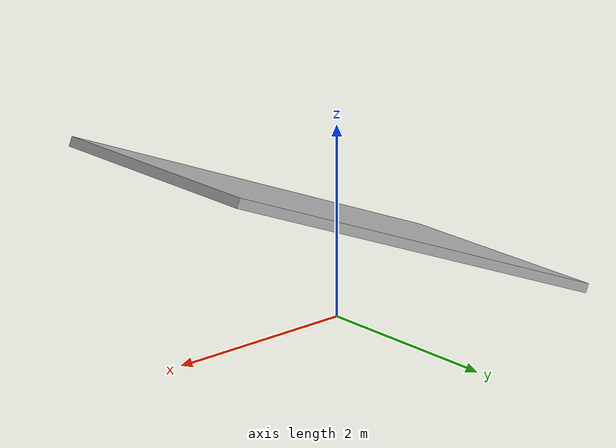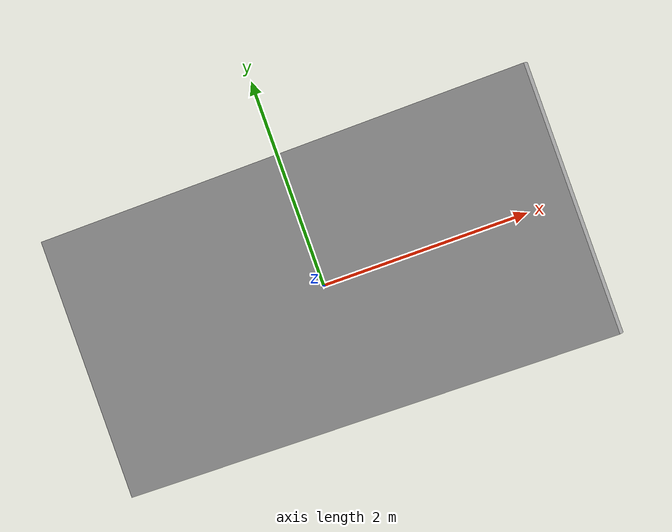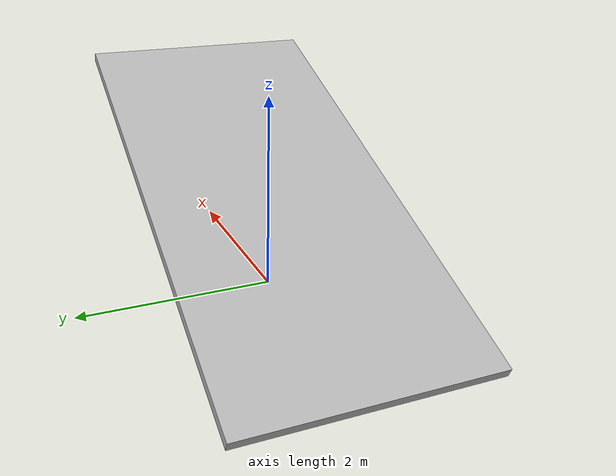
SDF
<?xml version="1.0" ?>
<sdf version="1.4">

  <model name="ramp">
    <static>true</static>

    <pose>0 0 1.05 0 0.4 3.1414</pose>
    <link name="link">
      <collision name="collision">
        <geometry>
          <box>
            <size>5 2.5 .1</size>
          </box>
        </geometry>
      </collision>
      <visual name="visual">
        <geometry>
          <box>
            <size>5 2.5 .1</size>
          </box>
        </geometry>
      </visual>
    </link>
  </model>

</sdf>
